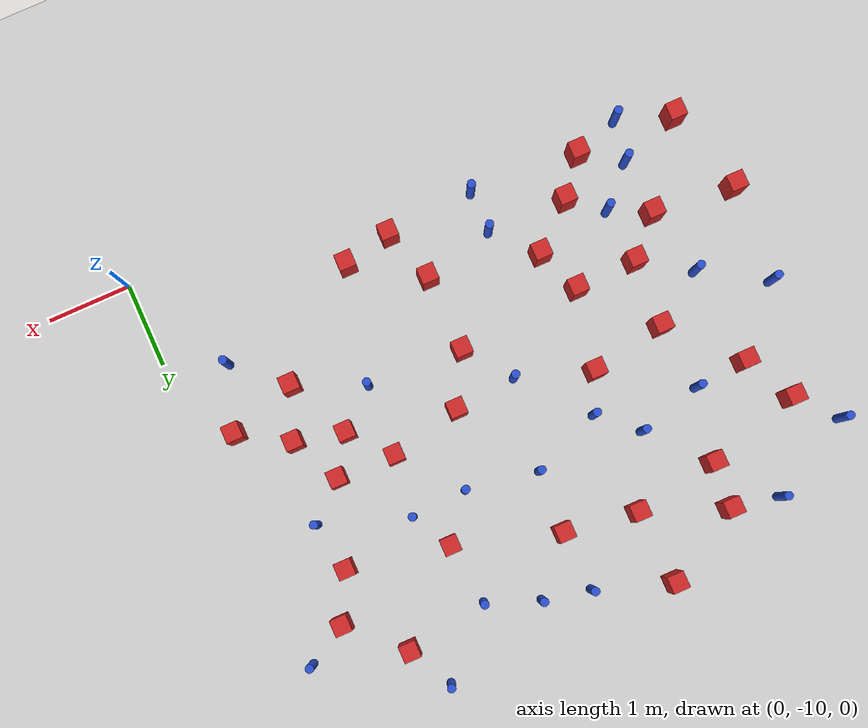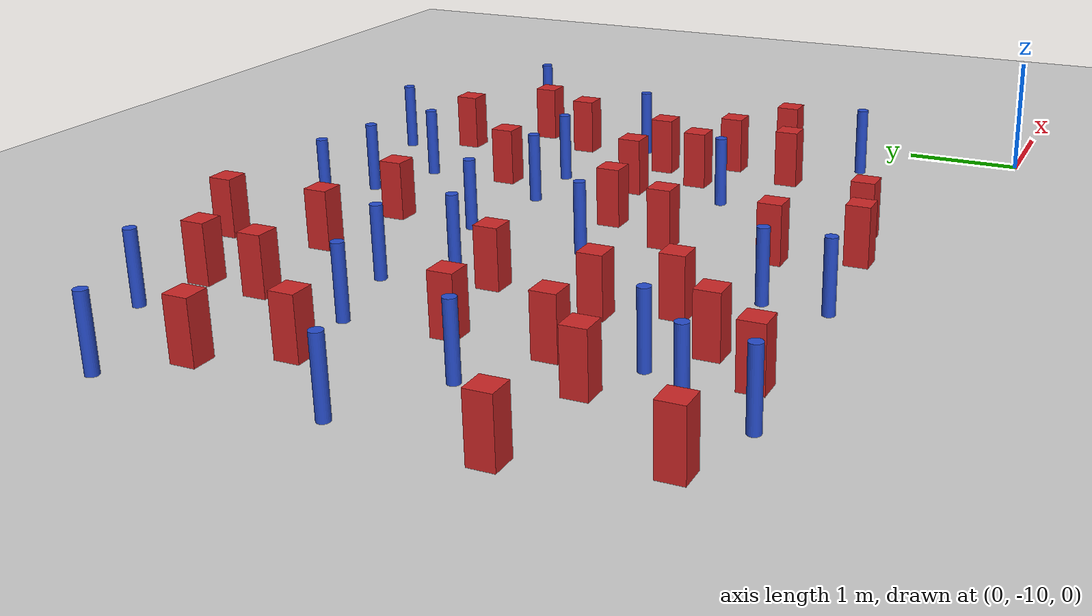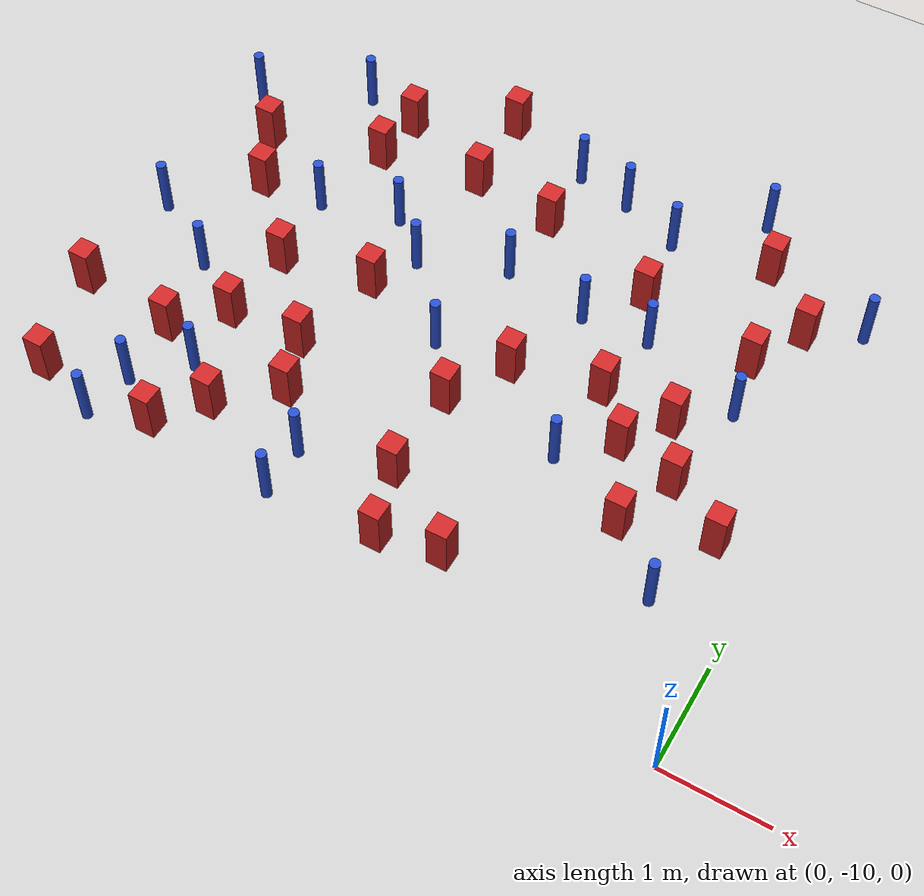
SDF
<sdf version="1.6">
 <world name="default">
  <model name="ground_plane">
   <static>1</static>
   <link name="link">
    <collision name="collision">
     <geometry><plane><normal>0 0 1</normal><size>100 100</size></plane></geometry>
     <surface><friction><ode><mu>100</mu><mu2>50</mu2></ode></friction></surface>
    </collision>
    <visual name="visual">
     <cast_shadows>0</cast_shadows>
     <geometry><plane><normal>0 0 1</normal><size>100 100</size></plane></geometry>
     <material>
      <ambient>1.0 1.0 1.0 1.0</ambient>
      <diffuse>0.8 0.8 0.8 1.0</diffuse>
      <specular>0.01 0.01 0.01 1.000000</specular>
     </material>
    </visual>
   </link>
  </model>
  <model name="square_post_obstacle12">
   <static>true</static>
   <pose>-5.41068607509 -7.08402210731 1.91545236811e-07 -7.35059704564e-06 1.12565212e-07 2.39332434364e-05</pose>
   <link name="link">
    <pose>0 0 0.25 0 -0 0</pose>
    <inertial>
     <mass>100</mass>
     <inertia>
      <ixx>0.166667</ixx>
      <ixy>0</ixy>
      <ixz>0</ixz>
      <iyy>0.166667</iyy>
      <iyz>0</iyz>
      <izz>0.166667</izz>
     </inertia>
    </inertial>
    <collision name="collision"><geometry><box><size>.2 .2 .5</size></box></geometry></collision>
    <visual name="visual">
     <geometry><box><size>.2 .2 .5</size></box></geometry>
     <material>
      <script><name>Gazebo/Red</name><uri>file://media/materials/scripts/gazebo.material</uri></script>
     </material>
    </visual>
   </link>
  </model>
  <model name="square_post_obstacle17">
   <static>true</static>
   <pose>-3.43209271855 -5.3860651551 1.91545236811e-07 -7.35059704564e-06 1.12565212e-07 2.39332434364e-05</pose>
   <link name="link">
    <pose>0 0 0.25 0 -0 0</pose>
    <inertial>
     <mass>100</mass>
     <inertia>
      <ixx>0.166667</ixx>
      <ixy>0</ixy>
      <ixz>0</ixz>
      <iyy>0.166667</iyy>
      <iyz>0</iyz>
      <izz>0.166667</izz>
     </inertia>
    </inertial>
    <collision name="collision"><geometry><box><size>.2 .2 .5</size></box></geometry></collision>
    <visual name="visual">
     <geometry><box><size>.2 .2 .5</size></box></geometry>
     <material>
      <script><name>Gazebo/Red</name><uri>file://media/materials/scripts/gazebo.material</uri></script>
     </material>
    </visual>
   </link>
  </model>
  <model name="square_post_obstacle22">
   <static>true</static>
   <pose>-2.038368199 -6.95661025734 1.91545236811e-07 -7.35059704564e-06 1.12565212e-07 2.39332434364e-05</pose>
   <link name="link">
    <pose>0 0 0.25 0 -0 0</pose>
    <inertial>
     <mass>100</mass>
     <inertia>
      <ixx>0.166667</ixx>
      <ixy>0</ixy>
      <ixz>0</ixz>
      <iyy>0.166667</iyy>
      <iyz>0</iyz>
      <izz>0.166667</izz>
     </inertia>
    </inertial>
    <collision name="collision"><geometry><box><size>.2 .2 .5</size></box></geometry></collision>
    <visual name="visual">
     <geometry><box><size>.2 .2 .5</size></box></geometry>
     <material>
      <script><name>Gazebo/Red</name><uri>file://media/materials/scripts/gazebo.material</uri></script>
     </material>
    </visual>
   </link>
  </model>
  <model name="square_post_obstacle24">
   <static>true</static>
   <pose>-3.20584514164 -8.66685840395 1.91545236811e-07 -7.35059704564e-06 1.12565212e-07 2.39332434364e-05</pose>
   <link name="link">
    <pose>0 0 0.25 0 -0 0</pose>
    <inertial>
     <mass>100</mass>
     <inertia>
      <ixx>0.166667</ixx>
      <ixy>0</ixy>
      <ixz>0</ixz>
      <iyy>0.166667</iyy>
      <iyz>0</iyz>
      <izz>0.166667</izz>
     </inertia>
    </inertial>
    <collision name="collision"><geometry><box><size>.2 .2 .5</size></box></geometry></collision>
    <visual name="visual">
     <geometry><box><size>.2 .2 .5</size></box></geometry>
     <material>
      <script><name>Gazebo/Red</name><uri>file://media/materials/scripts/gazebo.material</uri></script>
     </material>
    </visual>
   </link>
  </model>
  <model name="pole_obstacle18">
   <static>true</static>
   <pose>-3.46971509979 -6.12122088916 7.38925637345e-09 -8.47170692794e-08 1.24976764468e-08 -1.7451309304e-07</pose>
   <link name="link">
    <pose>0 0 0.3 0 -0 0</pose>
    <inertial>
     <mass>1</mass>
     <inertia><ixx>0.145833</ixx><ixy>0</ixy><ixz>0</ixz><iyy>0.145833</iyy><iyz>0</iyz><izz>0.125</izz></inertia>
    </inertial>
    <collision name="collision">
     <geometry><cylinder><radius>0.05</radius><length>.6</length></cylinder></geometry>
    </collision>
    <visual name="visual">
     <geometry><cylinder><radius>0.05</radius><length>.6</length></cylinder></geometry>
     <material>
      <script><name>Gazebo/Blue</name><uri>file://media/materials/scripts/gazebo.material</uri></script>
     </material>
    </visual>
   </link>
  </model>
  <model name="square_post_obstacle28">
   <static>true</static>
   <pose>-4.29787141564 -5.25751584329 1.91545236811e-07 -7.35059704564e-06 1.12565212e-07 2.39332434364e-05</pose>
   <link name="link">
    <pose>0 0 0.25 0 -0 0</pose>
    <inertial>
     <mass>100</mass>
     <inertia>
      <ixx>0.166667</ixx>
      <ixy>0</ixy>
      <ixz>0</ixz>
      <iyy>0.166667</iyy>
      <iyz>0</iyz>
      <izz>0.166667</izz>
     </inertia>
    </inertial>
    <collision name="collision"><geometry><box><size>.2 .2 .5</size></box></geometry></collision>
    <visual name="visual">
     <geometry><box><size>.2 .2 .5</size></box></geometry>
     <material>
      <script><name>Gazebo/Red</name><uri>file://media/materials/scripts/gazebo.material</uri></script>
     </material>
    </visual>
   </link>
  </model>
  <model name="pole_obstacle20">
   <static>true</static>
   <pose>-5.83680416563 -8.98309227645 7.38925637345e-09 -8.471706928e-08 1.24976765081e-08 -1.74513093015e-07</pose>
   <link name="link">
    <pose>0 0 0.3 0 -0 0</pose>
    <inertial>
     <mass>1</mass>
     <inertia><ixx>0.145833</ixx><ixy>0</ixy><ixz>0</ixz><iyy>0.145833</iyy><iyz>0</iyz><izz>0.125</izz></inertia>
    </inertial>
    <collision name="collision">
     <geometry><cylinder><radius>0.05</radius><length>.6</length></cylinder></geometry>
    </collision>
    <visual name="visual">
     <geometry><cylinder><radius>0.05</radius><length>.6</length></cylinder></geometry>
     <material>
      <script><name>Gazebo/Blue</name><uri>file://media/materials/scripts/gazebo.material</uri></script>
     </material>
    </visual>
   </link>
  </model>
  <model name="pole_obstacle23">
   <static>true</static>
   <pose>-4.06241376683 -9.38380228096 7.38925637345e-09 -8.471706928e-08 1.24976765081e-08 -1.74513093015e-07</pose>
   <link name="link">
    <pose>0 0 0.3 0 -0 0</pose>
    <inertial>
     <mass>1</mass>
     <inertia><ixx>0.145833</ixx><ixy>0</ixy><ixz>0</ixz><iyy>0.145833</iyy><iyz>0</iyz><izz>0.125</izz></inertia>
    </inertial>
    <collision name="collision">
     <geometry><cylinder><radius>0.05</radius><length>.6</length></cylinder></geometry>
    </collision>
    <visual name="visual">
     <geometry><cylinder><radius>0.05</radius><length>.6</length></cylinder></geometry>
     <material>
      <script><name>Gazebo/Blue</name><uri>file://media/materials/scripts/gazebo.material</uri></script>
     </material>
    </visual>
   </link>
  </model>
  <model name="pole_obstacle33">
   <static>true</static>
   <pose>-3.46158631779 -4.66086411762 7.38925637345e-09 -8.47170692798e-08 1.24976765033e-08 -1.74513093019e-07</pose>
   <link name="link">
    <pose>0 0 0.3 0 -0 0</pose>
    <inertial>
     <mass>1</mass>
     <inertia><ixx>0.145833</ixx><ixy>0</ixy><ixz>0</ixz><iyy>0.145833</iyy><iyz>0</iyz><izz>0.125</izz></inertia>
    </inertial>
    <collision name="collision">
     <geometry><cylinder><radius>0.05</radius><length>.6</length></cylinder></geometry>
    </collision>
    <visual name="visual">
     <geometry><cylinder><radius>0.05</radius><length>.6</length></cylinder></geometry>
     <material>
      <script><name>Gazebo/Blue</name><uri>file://media/materials/scripts/gazebo.material</uri></script>
     </material>
    </visual>
   </link>
  </model>
  <model name="pole_obstacle35">
   <static>true</static>
   <pose>-0.710234434921 -8.68471318132 7.38925637345e-09 -8.47170692797e-08 1.249767648e-08 -1.74513093032e-07</pose>
   <link name="link">
    <pose>0 0 0.3 0 -0 0</pose>
    <inertial>
     <mass>1</mass>
     <inertia><ixx>0.145833</ixx><ixy>0</ixy><ixz>0</ixz><iyy>0.145833</iyy><iyz>0</iyz><izz>0.125</izz></inertia>
    </inertial>
    <collision name="collision">
     <geometry><cylinder><radius>0.05</radius><length>.6</length></cylinder></geometry>
    </collision>
    <visual name="visual">
     <geometry><cylinder><radius>0.05</radius><length>.6</length></cylinder></geometry>
     <material>
      <script><name>Gazebo/Blue</name><uri>file://media/materials/scripts/gazebo.material</uri></script>
     </material>
    </visual>
   </link>
  </model>
  <model name="pole_obstacle43">
   <static>true</static>
   <pose>-4.06300433239 -8.88145770165 7.38925637345e-09 -8.471706928e-08 1.24976765081e-08 -1.74513093015e-07</pose>
   <link name="link">
    <pose>0 0 0.3 0 -0 0</pose>
    <inertial>
     <mass>1</mass>
     <inertia><ixx>0.145833</ixx><ixy>0</ixy><ixz>0</ixz><iyy>0.145833</iyy><iyz>0</iyz><izz>0.125</izz></inertia>
    </inertial>
    <collision name="collision">
     <geometry><cylinder><radius>0.05</radius><length>.6</length></cylinder></geometry>
    </collision>
    <visual name="visual">
     <geometry><cylinder><radius>0.05</radius><length>.6</length></cylinder></geometry>
     <material>
      <script><name>Gazebo/Blue</name><uri>file://media/materials/scripts/gazebo.material</uri></script>
     </material>
    </visual>
   </link>
  </model>
  <model name="square_post_obstacle53">
   <static>true</static>
   <pose>-1.05053099818 -7.55533912154 1.91545236811e-07 -7.35059704564e-06 1.12565212e-07 2.39332434364e-05</pose>
   <link name="link">
    <pose>0 0 0.25 0 -0 0</pose>
    <inertial>
     <mass>100</mass>
     <inertia>
      <ixx>0.166667</ixx>
      <ixy>0</ixy>
      <ixz>0</ixz>
      <iyy>0.166667</iyy>
      <iyz>0</iyz>
      <izz>0.166667</izz>
     </inertia>
    </inertial>
    <collision name="collision"><geometry><box><size>.2 .2 .5</size></box></geometry></collision>
    <visual name="visual">
     <geometry><box><size>.2 .2 .5</size></box></geometry>
     <material>
      <script><name>Gazebo/Red</name><uri>file://media/materials/scripts/gazebo.material</uri></script>
     </material>
    </visual>
   </link>
  </model>
  <model name="square_post_obstacle54">
   <static>true</static>
   <pose>-5.36515370955 -9.29335347738 1.91545236811e-07 -7.35059704564e-06 1.12565212e-07 2.39332434364e-05</pose>
   <link name="link">
    <pose>0 0 0.25 0 -0 0</pose>
    <inertial>
     <mass>100</mass>
     <inertia>
      <ixx>0.166667</ixx>
      <ixy>0</ixy>
      <ixz>0</ixz>
      <iyy>0.166667</iyy>
      <iyz>0</iyz>
      <izz>0.166667</izz>
     </inertia>
    </inertial>
    <collision name="collision"><geometry><box><size>.2 .2 .5</size></box></geometry></collision>
    <visual name="visual">
     <geometry><box><size>.2 .2 .5</size></box></geometry>
     <material>
      <script><name>Gazebo/Red</name><uri>file://media/materials/scripts/gazebo.material</uri></script>
     </material>
    </visual>
   </link>
  </model>
  <model name="square_post_obstacle60">
   <static>true</static>
   <pose>-2.88829652533 -7.14655431873 1.91545236811e-07 -7.35059704564e-06 1.12565212e-07 2.39332434364e-05</pose>
   <link name="link">
    <pose>0 0 0.25 0 -0 0</pose>
    <inertial>
     <mass>100</mass>
     <inertia>
      <ixx>0.166667</ixx>
      <ixy>0</ixy>
      <ixz>0</ixz>
      <iyy>0.166667</iyy>
      <iyz>0</iyz>
      <izz>0.166667</izz>
     </inertia>
    </inertial>
    <collision name="collision"><geometry><box><size>.2 .2 .5</size></box></geometry></collision>
    <visual name="visual">
     <geometry><box><size>.2 .2 .5</size></box></geometry>
     <material>
      <script><name>Gazebo/Red</name><uri>file://media/materials/scripts/gazebo.material</uri></script>
     </material>
    </visual>
   </link>
  </model>
  <model name="pole_obstacle60">
   <static>true</static>
   <pose>-1.94277217032 -6.22820637611 7.38925637345e-09 -8.47170692799e-08 1.24976765033e-08 -1.74513093018e-07</pose>
   <link name="link">
    <pose>0 0 0.3 0 -0 0</pose>
    <inertial>
     <mass>1</mass>
     <inertia><ixx>0.145833</ixx><ixy>0</ixy><ixz>0</ixz><iyy>0.145833</iyy><iyz>0</iyz><izz>0.125</izz></inertia>
    </inertial>
    <collision name="collision">
     <geometry><cylinder><radius>0.05</radius><length>.6</length></cylinder></geometry>
    </collision>
    <visual name="visual">
     <geometry><cylinder><radius>0.05</radius><length>.6</length></cylinder></geometry>
     <material>
      <script><name>Gazebo/Blue</name><uri>file://media/materials/scripts/gazebo.material</uri></script>
     </material>
    </visual>
   </link>
  </model>
  <model name="square_post_obstacle62">
   <static>true</static>
   <pose>-1.633328484 -7.4171841754 1.91545236811e-07 -7.35059704564e-06 1.12565212e-07 2.39332434364e-05</pose>
   <link name="link">
    <pose>0 0 0.25 0 -0 0</pose>
    <inertial>
     <mass>100</mass>
     <inertia>
      <ixx>0.166667</ixx>
      <ixy>0</ixy>
      <ixz>0</ixz>
      <iyy>0.166667</iyy>
      <iyz>0</iyz>
      <izz>0.166667</izz>
     </inertia>
    </inertial>
    <collision name="collision"><geometry><box><size>.2 .2 .5</size></box></geometry></collision>
    <visual name="visual">
     <geometry><box><size>.2 .2 .5</size></box></geometry>
     <material>
      <script><name>Gazebo/Red</name><uri>file://media/materials/scripts/gazebo.material</uri></script>
     </material>
    </visual>
   </link>
  </model>
  <model name="pole_obstacle63">
   <static>true</static>
   <pose>-1.58286187129 -4.33795926756 7.38925637345e-09 -8.47170692799e-08 1.24976765033e-08 -1.74513093018e-07</pose>
   <link name="link">
    <pose>0 0 0.3 0 -0 0</pose>
    <inertial>
     <mass>1</mass>
     <inertia><ixx>0.145833</ixx><ixy>0</ixy><ixz>0</ixz><iyy>0.145833</iyy><iyz>0</iyz><izz>0.125</izz></inertia>
    </inertial>
    <collision name="collision">
     <geometry><cylinder><radius>0.05</radius><length>.6</length></cylinder></geometry>
    </collision>
    <visual name="visual">
     <geometry><cylinder><radius>0.05</radius><length>.6</length></cylinder></geometry>
     <material>
      <script><name>Gazebo/Blue</name><uri>file://media/materials/scripts/gazebo.material</uri></script>
     </material>
    </visual>
   </link>
  </model>
  <model name="square_post_obstacle66">
   <static>true</static>
   <pose>-6.12490160005 -6.32883046452 1.91545236811e-07 -7.35059704564e-06 1.12565212e-07 2.39332434364e-05</pose>
   <link name="link">
    <pose>0 0 0.25 0 -0 0</pose>
    <inertial>
     <mass>100</mass>
     <inertia>
      <ixx>0.166667</ixx>
      <ixy>0</ixy>
      <ixz>0</ixz>
      <iyy>0.166667</iyy>
      <iyz>0</iyz>
      <izz>0.166667</izz>
     </inertia>
    </inertial>
    <collision name="collision"><geometry><box><size>.2 .2 .5</size></box></geometry></collision>
    <visual name="visual">
     <geometry><box><size>.2 .2 .5</size></box></geometry>
     <material>
      <script><name>Gazebo/Red</name><uri>file://media/materials/scripts/gazebo.material</uri></script>
     </material>
    </visual>
   </link>
  </model>
  <model name="square_post_obstacle72">
   <static>true</static>
   <pose>-2.99029878786 -9.30736781049 1.91545236811e-07 -7.35059704564e-06 1.12565212e-07 2.39332434364e-05</pose>
   <link name="link">
    <pose>0 0 0.25 0 -0 0</pose>
    <inertial>
     <mass>100</mass>
     <inertia>
      <ixx>0.166667</ixx>
      <ixy>0</ixy>
      <ixz>0</ixz>
      <iyy>0.166667</iyy>
      <iyz>0</iyz>
      <izz>0.166667</izz>
     </inertia>
    </inertial>
    <collision name="collision"><geometry><box><size>.2 .2 .5</size></box></geometry></collision>
    <visual name="visual">
     <geometry><box><size>.2 .2 .5</size></box></geometry>
     <material>
      <script><name>Gazebo/Red</name><uri>file://media/materials/scripts/gazebo.material</uri></script>
     </material>
    </visual>
   </link>
  </model>
  <model name="square_post_obstacle73">
   <static>true</static>
   <pose>-4.49659342837 -8.39695221917 1.91545236811e-07 -7.35059704564e-06 1.12565212e-07 2.39332434364e-05</pose>
   <link name="link">
    <pose>0 0 0.25 0 -0 0</pose>
    <inertial>
     <mass>100</mass>
     <inertia>
      <ixx>0.166667</ixx>
      <ixy>0</ixy>
      <ixz>0</ixz>
      <iyy>0.166667</iyy>
      <iyz>0</iyz>
      <izz>0.166667</izz>
     </inertia>
    </inertial>
    <collision name="collision"><geometry><box><size>.2 .2 .5</size></box></geometry></collision>
    <visual name="visual">
     <geometry><box><size>.2 .2 .5</size></box></geometry>
     <material>
      <script><name>Gazebo/Red</name><uri>file://media/materials/scripts/gazebo.material</uri></script>
     </material>
    </visual>
   </link>
  </model>
  <model name="square_post_obstacle74">
   <static>true</static>
   <pose>-2.41072366628 -9.18370162744 1.91545236811e-07 -7.35059704564e-06 1.12565212e-07 2.39332434364e-05</pose>
   <link name="link">
    <pose>0 0 0.25 0 -0 0</pose>
    <inertial>
     <mass>100</mass>
     <inertia>
      <ixx>0.166667</ixx>
      <ixy>0</ixy>
      <ixz>0</ixz>
      <iyy>0.166667</iyy>
      <iyz>0</iyz>
      <izz>0.166667</izz>
     </inertia>
    </inertial>
    <collision name="collision"><geometry><box><size>.2 .2 .5</size></box></geometry></collision>
    <visual name="visual">
     <geometry><box><size>.2 .2 .5</size></box></geometry>
     <material>
      <script><name>Gazebo/Red</name><uri>file://media/materials/scripts/gazebo.material</uri></script>
     </material>
    </visual>
   </link>
  </model>
  <model name="pole_obstacle78">
   <static>true</static>
   <pose>-2.08131502087 -7.80772590746 7.38925637345e-09 -8.47170692798e-08 1.24976765033e-08 -1.74513093019e-07</pose>
   <link name="link">
    <pose>0 0 0.3 0 -0 0</pose>
    <inertial>
     <mass>1</mass>
     <inertia><ixx>0.145833</ixx><ixy>0</ixy><ixz>0</ixz><iyy>0.145833</iyy><iyz>0</iyz><izz>0.125</izz></inertia>
    </inertial>
    <collision name="collision">
     <geometry><cylinder><radius>0.05</radius><length>.6</length></cylinder></geometry>
    </collision>
    <visual name="visual">
     <geometry><cylinder><radius>0.05</radius><length>.6</length></cylinder></geometry>
     <material>
      <script><name>Gazebo/Blue</name><uri>file://media/materials/scripts/gazebo.material</uri></script>
     </material>
    </visual>
   </link>
  </model>
  <model name="pole_obstacle89">
   <static>true</static>
   <pose>-6.8022423894 -7.04252857617 7.38925637345e-09 -8.47170692796e-08 1.24976764786e-08 -1.74513093032e-07</pose>
   <link name="link">
    <pose>0 0 0.3 0 -0 0</pose>
    <inertial>
     <mass>1</mass>
     <inertia><ixx>0.145833</ixx><ixy>0</ixy><ixz>0</ixz><iyy>0.145833</iyy><iyz>0</iyz><izz>0.125</izz></inertia>
    </inertial>
    <collision name="collision">
     <geometry><cylinder><radius>0.05</radius><length>.6</length></cylinder></geometry>
    </collision>
    <visual name="visual">
     <geometry><cylinder><radius>0.05</radius><length>.6</length></cylinder></geometry>
     <material>
      <script><name>Gazebo/Blue</name><uri>file://media/materials/scripts/gazebo.material</uri></script>
     </material>
    </visual>
   </link>
  </model>
  <model name="square_post_obstacle82">
   <static>true</static>
   <pose>-5.27118096039 -4.87388183172 1.91545236811e-07 -7.35059704564e-06 1.12565212e-07 2.39332434364e-05</pose>
   <link name="link">
    <pose>0 0 0.25 0 -0 0</pose>
    <inertial>
     <mass>100</mass>
     <inertia>
      <ixx>0.166667</ixx>
      <ixy>0</ixy>
      <ixz>0</ixz>
      <iyy>0.166667</iyy>
      <iyz>0</iyz>
      <izz>0.166667</izz>
     </inertia>
    </inertial>
    <collision name="collision"><geometry><box><size>.2 .2 .5</size></box></geometry></collision>
    <visual name="visual">
     <geometry><box><size>.2 .2 .5</size></box></geometry>
     <material>
      <script><name>Gazebo/Red</name><uri>file://media/materials/scripts/gazebo.material</uri></script>
     </material>
    </visual>
   </link>
  </model>
  <model name="pole_obstacle91">
   <static>true</static>
   <pose>-5.93264494707 -9.48637314836 7.38925637345e-09 -8.471706928e-08 1.24976765081e-08 -1.74513093015e-07</pose>
   <link name="link">
    <pose>0 0 0.3 0 -0 0</pose>
    <inertial>
     <mass>1</mass>
     <inertia><ixx>0.145833</ixx><ixy>0</ixy><ixz>0</ixz><iyy>0.145833</iyy><iyz>0</iyz><izz>0.125</izz></inertia>
    </inertial>
    <collision name="collision">
     <geometry><cylinder><radius>0.05</radius><length>.6</length></cylinder></geometry>
    </collision>
    <visual name="visual">
     <geometry><cylinder><radius>0.05</radius><length>.6</length></cylinder></geometry>
     <material>
      <script><name>Gazebo/Blue</name><uri>file://media/materials/scripts/gazebo.material</uri></script>
     </material>
    </visual>
   </link>
  </model>
  <model name="pole_obstacle97">
   <static>true</static>
   <pose>-5.41301992296 -8.54826556517 7.38925637345e-09 -8.471706928e-08 1.24976765081e-08 -1.74513093015e-07</pose>
   <link name="link">
    <pose>0 0 0.3 0 -0 0</pose>
    <inertial>
     <mass>1</mass>
     <inertia><ixx>0.145833</ixx><ixy>0</ixy><ixz>0</ixz><iyy>0.145833</iyy><iyz>0</iyz><izz>0.125</izz></inertia>
    </inertial>
    <collision name="collision">
     <geometry><cylinder><radius>0.05</radius><length>.6</length></cylinder></geometry>
    </collision>
    <visual name="visual">
     <geometry><cylinder><radius>0.05</radius><length>.6</length></cylinder></geometry>
     <material>
      <script><name>Gazebo/Blue</name><uri>file://media/materials/scripts/gazebo.material</uri></script>
     </material>
    </visual>
   </link>
  </model>
  <model name="square_post_obstacle92">
   <static>true</static>
   <pose>-1.34104956124 -6.97358590977 1.91545236811e-07 -7.35059704564e-06 1.12565212e-07 2.39332434364e-05</pose>
   <link name="link">
    <pose>0 0 0.25 0 -0 0</pose>
    <inertial>
     <mass>100</mass>
     <inertia>
      <ixx>0.166667</ixx>
      <ixy>0</ixy>
      <ixz>0</ixz>
      <iyy>0.166667</iyy>
      <iyz>0</iyz>
      <izz>0.166667</izz>
     </inertia>
    </inertial>
    <collision name="collision"><geometry><box><size>.2 .2 .5</size></box></geometry></collision>
    <visual name="visual">
     <geometry><box><size>.2 .2 .5</size></box></geometry>
     <material>
      <script><name>Gazebo/Red</name><uri>file://media/materials/scripts/gazebo.material</uri></script>
     </material>
    </visual>
   </link>
  </model>
  <model name="pole_obstacle108">
   <static>true</static>
   <pose>-6.0496645316 -7.49928744489 7.38925637345e-09 -8.47170692796e-08 1.24976764786e-08 -1.74513093032e-07</pose>
   <link name="link">
    <pose>0 0 0.3 0 -0 0</pose>
    <inertial>
     <mass>1</mass>
     <inertia><ixx>0.145833</ixx><ixy>0</ixy><ixz>0</ixz><iyy>0.145833</iyy><iyz>0</iyz><izz>0.125</izz></inertia>
    </inertial>
    <collision name="collision">
     <geometry><cylinder><radius>0.05</radius><length>.6</length></cylinder></geometry>
    </collision>
    <visual name="visual">
     <geometry><cylinder><radius>0.05</radius><length>.6</length></cylinder></geometry>
     <material>
      <script><name>Gazebo/Blue</name><uri>file://media/materials/scripts/gazebo.material</uri></script>
     </material>
    </visual>
   </link>
  </model>
  <model name="square_post_obstacle96">
   <static>true</static>
   <pose>-6.5650696146 -9.25164843919 1.91545236811e-07 -7.35059704564e-06 1.12565212e-07 2.39332434364e-05</pose>
   <link name="link">
    <pose>0 0 0.25 0 -0 0</pose>
    <inertial>
     <mass>100</mass>
     <inertia>
      <ixx>0.166667</ixx>
      <ixy>0</ixy>
      <ixz>0</ixz>
      <iyy>0.166667</iyy>
      <iyz>0</iyz>
      <izz>0.166667</izz>
     </inertia>
    </inertial>
    <collision name="collision"><geometry><box><size>.2 .2 .5</size></box></geometry></collision>
    <visual name="visual">
     <geometry><box><size>.2 .2 .5</size></box></geometry>
     <material>
      <script><name>Gazebo/Red</name><uri>file://media/materials/scripts/gazebo.material</uri></script>
     </material>
    </visual>
   </link>
  </model>
  <model name="pole_obstacle111">
   <static>true</static>
   <pose>-0.240811397069 -5.16509340527 7.38925637345e-09 -8.47170692799e-08 1.2497676507e-08 -1.74513093018e-07</pose>
   <link name="link">
    <pose>0 0 0.3 0 -0 0</pose>
    <inertial>
     <mass>1</mass>
     <inertia><ixx>0.145833</ixx><ixy>0</ixy><ixz>0</ixz><iyy>0.145833</iyy><iyz>0</iyz><izz>0.125</izz></inertia>
    </inertial>
    <collision name="collision">
     <geometry><cylinder><radius>0.05</radius><length>.6</length></cylinder></geometry>
    </collision>
    <visual name="visual">
     <geometry><cylinder><radius>0.05</radius><length>.6</length></cylinder></geometry>
     <material>
      <script><name>Gazebo/Blue</name><uri>file://media/materials/scripts/gazebo.material</uri></script>
     </material>
    </visual>
   </link>
  </model>
  <model name="square_post_obstacle103">
   <static>true</static>
   <pose>-6.44052211273 -5.73712340366 1.91545236811e-07 -7.35059704564e-06 1.12565212e-07 2.39332434364e-05</pose>
   <link name="link">
    <pose>0 0 0.25 0 -0 0</pose>
    <inertial>
     <mass>100</mass>
     <inertia>
      <ixx>0.166667</ixx>
      <ixy>0</ixy>
      <ixz>0</ixz>
      <iyy>0.166667</iyy>
      <iyz>0</iyz>
      <izz>0.166667</izz>
     </inertia>
    </inertial>
    <collision name="collision"><geometry><box><size>.2 .2 .5</size></box></geometry></collision>
    <visual name="visual">
     <geometry><box><size>.2 .2 .5</size></box></geometry>
     <material>
      <script><name>Gazebo/Red</name><uri>file://media/materials/scripts/gazebo.material</uri></script>
     </material>
    </visual>
   </link>
  </model>
  <model name="square_post_obstacle105">
   <static>true</static>
   <pose>-5.3130401738 -5.42186706929 1.91545236811e-07 -7.35059704564e-06 1.12565212e-07 2.39332434364e-05</pose>
   <link name="link">
    <pose>0 0 0.25 0 -0 0</pose>
    <inertial>
     <mass>100</mass>
     <inertia>
      <ixx>0.166667</ixx>
      <ixy>0</ixy>
      <ixz>0</ixz>
      <iyy>0.166667</iyy>
      <iyz>0</iyz>
      <izz>0.166667</izz>
     </inertia>
    </inertial>
    <collision name="collision"><geometry><box><size>.2 .2 .5</size></box></geometry></collision>
    <visual name="visual">
     <geometry><box><size>.2 .2 .5</size></box></geometry>
     <material>
      <script><name>Gazebo/Red</name><uri>file://media/materials/scripts/gazebo.material</uri></script>
     </material>
    </visual>
   </link>
  </model>
  <model name="square_post_obstacle107">
   <static>true</static>
   <pose>-5.45247419289 -7.88697230379 1.91545236811e-07 -7.35059704564e-06 1.12565212e-07 2.39332434364e-05</pose>
   <link name="link">
    <pose>0 0 0.25 0 -0 0</pose>
    <inertial>
     <mass>100</mass>
     <inertia>
      <ixx>0.166667</ixx>
      <ixy>0</ixy>
      <ixz>0</ixz>
      <iyy>0.166667</iyy>
      <iyz>0</iyz>
      <izz>0.166667</izz>
     </inertia>
    </inertial>
    <collision name="collision"><geometry><box><size>.2 .2 .5</size></box></geometry></collision>
    <visual name="visual">
     <geometry><box><size>.2 .2 .5</size></box></geometry>
     <material>
      <script><name>Gazebo/Red</name><uri>file://media/materials/scripts/gazebo.material</uri></script>
     </material>
    </visual>
   </link>
  </model>
  <model name="pole_obstacle123">
   <static>true</static>
   <pose>-5.85402552709 -4.7521753396 7.38925637345e-09 -8.47170692796e-08 1.24976764786e-08 -1.74513093032e-07</pose>
   <link name="link">
    <pose>0 0 0.3 0 -0 0</pose>
    <inertial>
     <mass>1</mass>
     <inertia><ixx>0.145833</ixx><ixy>0</ixy><ixz>0</ixz><iyy>0.145833</iyy><iyz>0</iyz><izz>0.125</izz></inertia>
    </inertial>
    <collision name="collision">
     <geometry><cylinder><radius>0.05</radius><length>.6</length></cylinder></geometry>
    </collision>
    <visual name="visual">
     <geometry><cylinder><radius>0.05</radius><length>.6</length></cylinder></geometry>
     <material>
      <script><name>Gazebo/Blue</name><uri>file://media/materials/scripts/gazebo.material</uri></script>
     </material>
    </visual>
   </link>
  </model>
  <model name="square_post_obstacle114">
   <static>true</static>
   <pose>-6.8543479229 -8.21620341294 1.91545236811e-07 -7.35059704564e-06 1.12565212e-07 2.39332434364e-05</pose>
   <link name="link">
    <pose>0 0 0.25 0 -0 0</pose>
    <inertial>
     <mass>100</mass>
     <inertia>
      <ixx>0.166667</ixx>
      <ixy>0</ixy>
      <ixz>0</ixz>
      <iyy>0.166667</iyy>
      <iyz>0</iyz>
      <izz>0.166667</izz>
     </inertia>
    </inertial>
    <collision name="collision"><geometry><box><size>.2 .2 .5</size></box></geometry></collision>
    <visual name="visual">
     <geometry><box><size>.2 .2 .5</size></box></geometry>
     <material>
      <script><name>Gazebo/Red</name><uri>file://media/materials/scripts/gazebo.material</uri></script>
     </material>
    </visual>
   </link>
  </model>
  <model name="square_post_obstacle117">
   <static>true</static>
   <pose>-3.22059697371 -7.7479272865 1.91545236811e-07 -7.35059704564e-06 1.12565212e-07 2.39332434364e-05</pose>
   <link name="link">
    <pose>0 0 0.25 0 -0 0</pose>
    <inertial>
     <mass>100</mass>
     <inertia>
      <ixx>0.166667</ixx>
      <ixy>0</ixy>
      <ixz>0</ixz>
      <iyy>0.166667</iyy>
      <iyz>0</iyz>
      <izz>0.166667</izz>
     </inertia>
    </inertial>
    <collision name="collision"><geometry><box><size>.2 .2 .5</size></box></geometry></collision>
    <visual name="visual">
     <geometry><box><size>.2 .2 .5</size></box></geometry>
     <material>
      <script><name>Gazebo/Red</name><uri>file://media/materials/scripts/gazebo.material</uri></script>
     </material>
    </visual>
   </link>
  </model>
  <model name="square_post_obstacle123">
   <static>true</static>
   <pose>-0.731444615216 -5.44779982728 1.91545236811e-07 -7.35059704564e-06 1.12565212e-07 2.39332434364e-05</pose>
   <link name="link">
    <pose>0 0 0.25 0 -0 0</pose>
    <inertial>
     <mass>100</mass>
     <inertia>
      <ixx>0.166667</ixx>
      <ixy>0</ixy>
      <ixz>0</ixz>
      <iyy>0.166667</iyy>
      <iyz>0</iyz>
      <izz>0.166667</izz>
     </inertia>
    </inertial>
    <collision name="collision"><geometry><box><size>.2 .2 .5</size></box></geometry></collision>
    <visual name="visual">
     <geometry><box><size>.2 .2 .5</size></box></geometry>
     <material>
      <script><name>Gazebo/Red</name><uri>file://media/materials/scripts/gazebo.material</uri></script>
     </material>
    </visual>
   </link>
  </model>
  <model name="square_post_obstacle136">
   <static>true</static>
   <pose>-1.2735293029 -8.16457493738 1.91545236811e-07 -7.35059704564e-06 1.12565212e-07 2.39332434364e-05</pose>
   <link name="link">
    <pose>0 0 0.25 0 -0 0</pose>
    <inertial>
     <mass>100</mass>
     <inertia>
      <ixx>0.166667</ixx>
      <ixy>0</ixy>
      <ixz>0</ixz>
      <iyy>0.166667</iyy>
      <iyz>0</iyz>
      <izz>0.166667</izz>
     </inertia>
    </inertial>
    <collision name="collision"><geometry><box><size>.2 .2 .5</size></box></geometry></collision>
    <visual name="visual">
     <geometry><box><size>.2 .2 .5</size></box></geometry>
     <material>
      <script><name>Gazebo/Red</name><uri>file://media/materials/scripts/gazebo.material</uri></script>
     </material>
    </visual>
   </link>
  </model>
  <model name="pole_obstacle146">
   <static>true</static>
   <pose>-4.29705899095 -6.45734727674 7.38925637345e-09 -8.47170692796e-08 1.24976764786e-08 -1.74513093032e-07</pose>
   <link name="link">
    <pose>0 0 0.3 0 -0 0</pose>
    <inertial>
     <mass>1</mass>
     <inertia><ixx>0.145833</ixx><ixy>0</ixy><ixz>0</ixz><iyy>0.145833</iyy><iyz>0</iyz><izz>0.125</izz></inertia>
    </inertial>
    <collision name="collision">
     <geometry><cylinder><radius>0.05</radius><length>.6</length></cylinder></geometry>
    </collision>
    <visual name="visual">
     <geometry><cylinder><radius>0.05</radius><length>.6</length></cylinder></geometry>
     <material>
      <script><name>Gazebo/Blue</name><uri>file://media/materials/scripts/gazebo.material</uri></script>
     </material>
    </visual>
   </link>
  </model>
  <model name="pole_obstacle148">
   <static>true</static>
   <pose>-2.89820600436 -4.78071408801 7.38925637345e-09 -8.47170692798e-08 1.24976765033e-08 -1.74513093019e-07</pose>
   <link name="link">
    <pose>0 0 0.3 0 -0 0</pose>
    <inertial>
     <mass>1</mass>
     <inertia><ixx>0.145833</ixx><ixy>0</ixy><ixz>0</ixz><iyy>0.145833</iyy><iyz>0</iyz><izz>0.125</izz></inertia>
    </inertial>
    <collision name="collision">
     <geometry><cylinder><radius>0.05</radius><length>.6</length></cylinder></geometry>
    </collision>
    <visual name="visual">
     <geometry><cylinder><radius>0.05</radius><length>.6</length></cylinder></geometry>
     <material>
      <script><name>Gazebo/Blue</name><uri>file://media/materials/scripts/gazebo.material</uri></script>
     </material>
    </visual>
   </link>
  </model>
  <model name="pole_obstacle150">
   <static>true</static>
   <pose>-2.28552594594 -5.02235626429 7.38925637345e-09 -8.47170692798e-08 1.24976765033e-08 -1.74513093019e-07</pose>
   <link name="link">
    <pose>0 0 0.3 0 -0 0</pose>
    <inertial>
     <mass>1</mass>
     <inertia><ixx>0.145833</ixx><ixy>0</ixy><ixz>0</ixz><iyy>0.145833</iyy><iyz>0</iyz><izz>0.125</izz></inertia>
    </inertial>
    <collision name="collision">
     <geometry><cylinder><radius>0.05</radius><length>.6</length></cylinder></geometry>
    </collision>
    <visual name="visual">
     <geometry><cylinder><radius>0.05</radius><length>.6</length></cylinder></geometry>
     <material>
      <script><name>Gazebo/Blue</name><uri>file://media/materials/scripts/gazebo.material</uri></script>
     </material>
    </visual>
   </link>
  </model>
  <model name="pole_obstacle155">
   <static>true</static>
   <pose>-2.60984735376 -6.26531074343 7.38925637345e-09 -8.47170692798e-08 1.24976765033e-08 -1.74513093019e-07</pose>
   <link name="link">
    <pose>0 0 0.3 0 -0 0</pose>
    <inertial>
     <mass>1</mass>
     <inertia><ixx>0.145833</ixx><ixy>0</ixy><ixz>0</ixz><iyy>0.145833</iyy><iyz>0</iyz><izz>0.125</izz></inertia>
    </inertial>
    <collision name="collision">
     <geometry><cylinder><radius>0.05</radius><length>.6</length></cylinder></geometry>
    </collision>
    <visual name="visual">
     <geometry><cylinder><radius>0.05</radius><length>.6</length></cylinder></geometry>
     <material>
      <script><name>Gazebo/Blue</name><uri>file://media/materials/scripts/gazebo.material</uri></script>
     </material>
    </visual>
   </link>
  </model>
  <model name="pole_obstacle157">
   <static>true</static>
   <pose>-3.63916560769 -7.21319885248 7.38925637345e-09 -8.47170692794e-08 1.24976764468e-08 -1.7451309304e-07</pose>
   <link name="link">
    <pose>0 0 0.3 0 -0 0</pose>
    <inertial>
     <mass>1</mass>
     <inertia><ixx>0.145833</ixx><ixy>0</ixy><ixz>0</ixz><iyy>0.145833</iyy><iyz>0</iyz><izz>0.125</izz></inertia>
    </inertial>
    <collision name="collision">
     <geometry><cylinder><radius>0.05</radius><length>.6</length></cylinder></geometry>
    </collision>
    <visual name="visual">
     <geometry><cylinder><radius>0.05</radius><length>.6</length></cylinder></geometry>
     <material>
      <script><name>Gazebo/Blue</name><uri>file://media/materials/scripts/gazebo.material</uri></script>
     </material>
    </visual>
   </link>
  </model>
  <model name="pole_obstacle162">
   <static>true</static>
   <pose>-5.50503059505 -6.27062995031 7.38925637345e-09 -8.47170692796e-08 1.24976764786e-08 -1.74513093032e-07</pose>
   <link name="link">
    <pose>0 0 0.3 0 -0 0</pose>
    <inertial>
     <mass>1</mass>
     <inertia><ixx>0.145833</ixx><ixy>0</ixy><ixz>0</ixz><iyy>0.145833</iyy><iyz>0</iyz><izz>0.125</izz></inertia>
    </inertial>
    <collision name="collision">
     <geometry><cylinder><radius>0.05</radius><length>.6</length></cylinder></geometry>
    </collision>
    <visual name="visual">
     <geometry><cylinder><radius>0.05</radius><length>.6</length></cylinder></geometry>
     <material>
      <script><name>Gazebo/Blue</name><uri>file://media/materials/scripts/gazebo.material</uri></script>
     </material>
    </visual>
   </link>
  </model>
  <model name="square_post_obstacle158">
   <static>true</static>
   <pose>-4.51276837913 -6.91771646035 1.91545236811e-07 -7.35059704564e-06 1.12565212e-07 2.39332434364e-05</pose>
   <link name="link">
    <pose>0 0 0.25 0 -0 0</pose>
    <inertial>
     <mass>100</mass>
     <inertia>
      <ixx>0.166667</ixx>
      <ixy>0</ixy>
      <ixz>0</ixz>
      <iyy>0.166667</iyy>
      <iyz>0</iyz>
      <izz>0.166667</izz>
     </inertia>
    </inertial>
    <collision name="collision"><geometry><box><size>.2 .2 .5</size></box></geometry></collision>
    <visual name="visual">
     <geometry><box><size>.2 .2 .5</size></box></geometry>
     <material>
      <script><name>Gazebo/Red</name><uri>file://media/materials/scripts/gazebo.material</uri></script>
     </material>
    </visual>
   </link>
  </model>
  <model name="square_post_obstacle161">
   <static>true</static>
   <pose>-1.31505514524 -4.87814868228 1.91545236811e-07 -7.35059704564e-06 1.12565212e-07 2.39332434364e-05</pose>
   <link name="link">
    <pose>0 0 0.25 0 -0 0</pose>
    <inertial>
     <mass>100</mass>
     <inertia>
      <ixx>0.166667</ixx>
      <ixy>0</ixy>
      <ixz>0</ixz>
      <iyy>0.166667</iyy>
      <iyz>0</iyz>
      <izz>0.166667</izz>
     </inertia>
    </inertial>
    <collision name="collision"><geometry><box><size>.2 .2 .5</size></box></geometry></collision>
    <visual name="visual">
     <geometry><box><size>.2 .2 .5</size></box></geometry>
     <material>
      <script><name>Gazebo/Red</name><uri>file://media/materials/scripts/gazebo.material</uri></script>
     </material>
    </visual>
   </link>
  </model>
  <model name="square_post_obstacle169">
   <static>true</static>
   <pose>-2.20511327161 -5.76873931842 1.91545236811e-07 -7.35059704564e-06 1.12565212e-07 2.39332434364e-05</pose>
   <link name="link">
    <pose>0 0 0.25 0 -0 0</pose>
    <inertial>
     <mass>100</mass>
     <inertia>
      <ixx>0.166667</ixx>
      <ixy>0</ixy>
      <ixz>0</ixz>
      <iyy>0.166667</iyy>
      <iyz>0</iyz>
      <izz>0.166667</izz>
     </inertia>
    </inertial>
    <collision name="collision"><geometry><box><size>.2 .2 .5</size></box></geometry></collision>
    <visual name="visual">
     <geometry><box><size>.2 .2 .5</size></box></geometry>
     <material>
      <script><name>Gazebo/Red</name><uri>file://media/materials/scripts/gazebo.material</uri></script>
     </material>
    </visual>
   </link>
  </model>
  <model name="square_post_obstacle175">
   <static>true</static>
   <pose>-0.471311503338 -7.91204319302 1.91545236811e-07 -7.35059704564e-06 1.12565212e-07 2.39332434364e-05</pose>
   <link name="link">
    <pose>0 0 0.25 0 -0 0</pose>
    <inertial>
     <mass>100</mass>
     <inertia>
      <ixx>0.166667</ixx>
      <ixy>0</ixy>
      <ixz>0</ixz>
      <iyy>0.166667</iyy>
      <iyz>0</iyz>
      <izz>0.166667</izz>
     </inertia>
    </inertial>
    <collision name="collision"><geometry><box><size>.2 .2 .5</size></box></geometry></collision>
    <visual name="visual">
     <geometry><box><size>.2 .2 .5</size></box></geometry>
     <material>
      <script><name>Gazebo/Red</name><uri>file://media/materials/scripts/gazebo.material</uri></script>
     </material>
    </visual>
   </link>
  </model>
  <model name="square_post_obstacle179">
   <static>true</static>
   <pose>-5.86843596142 -8.31386037906 1.91545236811e-07 -7.35059704564e-06 1.12565212e-07 2.39332434364e-05</pose>
   <link name="link">
    <pose>0 0 0.25 0 -0 0</pose>
    <inertial>
     <mass>100</mass>
     <inertia>
      <ixx>0.166667</ixx>
      <ixy>0</ixy>
      <ixz>0</ixz>
      <iyy>0.166667</iyy>
      <iyz>0</iyz>
      <izz>0.166667</izz>
     </inertia>
    </inertial>
    <collision name="collision"><geometry><box><size>.2 .2 .5</size></box></geometry></collision>
    <visual name="visual">
     <geometry><box><size>.2 .2 .5</size></box></geometry>
     <material>
      <script><name>Gazebo/Red</name><uri>file://media/materials/scripts/gazebo.material</uri></script>
     </material>
    </visual>
   </link>
  </model>
  <model name="square_post_obstacle180">
   <static>true</static>
   <pose>-4.71020834915 -7.86213813308 1.91545236811e-07 -7.35059704564e-06 1.12565212e-07 2.39332434364e-05</pose>
   <link name="link">
    <pose>0 0 0.25 0 -0 0</pose>
    <inertial>
     <mass>100</mass>
     <inertia>
      <ixx>0.166667</ixx>
      <ixy>0</ixy>
      <ixz>0</ixz>
      <iyy>0.166667</iyy>
      <iyz>0</iyz>
      <izz>0.166667</izz>
     </inertia>
    </inertial>
    <collision name="collision"><geometry><box><size>.2 .2 .5</size></box></geometry></collision>
    <visual name="visual">
     <geometry><box><size>.2 .2 .5</size></box></geometry>
     <material>
      <script><name>Gazebo/Red</name><uri>file://media/materials/scripts/gazebo.material</uri></script>
     </material>
    </visual>
   </link>
  </model>
  <model name="square_post_obstacle185">
   <static>true</static>
   <pose>-4.35233707004 -4.36807843457 1.91545236811e-07 -7.35059704564e-06 1.12565212e-07 2.39332434364e-05</pose>
   <link name="link">
    <pose>0 0 0.25 0 -0 0</pose>
    <inertial>
     <mass>100</mass>
     <inertia>
      <ixx>0.166667</ixx>
      <ixy>0</ixy>
      <ixz>0</ixz>
      <iyy>0.166667</iyy>
      <iyz>0</iyz>
      <izz>0.166667</izz>
     </inertia>
    </inertial>
    <collision name="collision"><geometry><box><size>.2 .2 .5</size></box></geometry></collision>
    <visual name="visual">
     <geometry><box><size>.2 .2 .5</size></box></geometry>
     <material>
      <script><name>Gazebo/Red</name><uri>file://media/materials/scripts/gazebo.material</uri></script>
     </material>
    </visual>
   </link>
  </model>
  <model name="pole_obstacle190">
   <static>true</static>
   <pose>-6.8607998515 -5.28476498031 7.38925637345e-09 -8.47170692796e-08 1.24976764786e-08 -1.74513093032e-07</pose>
   <link name="link">
    <pose>0 0 0.3 0 -0 0</pose>
    <inertial>
     <mass>1</mass>
     <inertia><ixx>0.145833</ixx><ixy>0</ixy><ixz>0</ixz><iyy>0.145833</iyy><iyz>0</iyz><izz>0.125</izz></inertia>
    </inertial>
    <collision name="collision">
     <geometry><cylinder><radius>0.05</radius><length>.6</length></cylinder></geometry>
    </collision>
    <visual name="visual">
     <geometry><cylinder><radius>0.05</radius><length>.6</length></cylinder></geometry>
     <material>
      <script><name>Gazebo/Blue</name><uri>file://media/materials/scripts/gazebo.material</uri></script>
     </material>
    </visual>
   </link>
  </model>
  <model name="pole_obstacle204">
   <static>true</static>
   <pose>-0.908190618324 -6.58870760293 7.38925637345e-09 -8.471706928e-08 1.24976765086e-08 -1.74513093015e-07</pose>
   <link name="link">
    <pose>0 0 0.3 0 -0 0</pose>
    <inertial>
     <mass>1</mass>
     <inertia><ixx>0.145833</ixx><ixy>0</ixy><ixz>0</ixz><iyy>0.145833</iyy><iyz>0</iyz><izz>0.125</izz></inertia>
    </inertial>
    <collision name="collision">
     <geometry><cylinder><radius>0.05</radius><length>.6</length></cylinder></geometry>
    </collision>
    <visual name="visual">
     <geometry><cylinder><radius>0.05</radius><length>.6</length></cylinder></geometry>
     <material>
      <script><name>Gazebo/Blue</name><uri>file://media/materials/scripts/gazebo.material</uri></script>
     </material>
    </visual>
   </link>
  </model>
  <model name="pole_obstacle209">
   <static>true</static>
   <pose>-4.7272504946 -6.06401273449 7.38925637345e-09 -8.47170692796e-08 1.24976764786e-08 -1.74513093032e-07</pose>
   <link name="link">
    <pose>0 0 0.3 0 -0 0</pose>
    <inertial>
     <mass>1</mass>
     <inertia><ixx>0.145833</ixx><ixy>0</ixy><ixz>0</ixz><iyy>0.145833</iyy><iyz>0</iyz><izz>0.125</izz></inertia>
    </inertial>
    <collision name="collision">
     <geometry><cylinder><radius>0.05</radius><length>.6</length></cylinder></geometry>
    </collision>
    <visual name="visual">
     <geometry><cylinder><radius>0.05</radius><length>.6</length></cylinder></geometry>
     <material>
      <script><name>Gazebo/Blue</name><uri>file://media/materials/scripts/gazebo.material</uri></script>
     </material>
    </visual>
   </link>
  </model>
  <model name="square_post_obstacle207">
   <static>true</static>
   <pose>-5.0137300352 -8.86068001192 1.91545236811e-07 -7.35059704564e-06 1.12565212e-07 2.39332434364e-05</pose>
   <link name="link">
    <pose>0 0 0.25 0 -0 0</pose>
    <inertial>
     <mass>100</mass>
     <inertia>
      <ixx>0.166667</ixx>
      <ixy>0</ixy>
      <ixz>0</ixz>
      <iyy>0.166667</iyy>
      <iyz>0</iyz>
      <izz>0.166667</izz>
     </inertia>
    </inertial>
    <collision name="collision"><geometry><box><size>.2 .2 .5</size></box></geometry></collision>
    <visual name="visual">
     <geometry><box><size>.2 .2 .5</size></box></geometry>
     <material>
      <script><name>Gazebo/Red</name><uri>file://media/materials/scripts/gazebo.material</uri></script>
     </material>
    </visual>
   </link>
  </model>
  <model name="square_post_obstacle209">
   <static>true</static>
   <pose>-1.0168600352 -6.00150001192 1.91545236811e-07 -7.35059704564e-06 1.12565212e-07 2.39332434364e-05</pose>
   <link name="link">
    <pose>0 0 0.25 0 -0 0</pose>
    <inertial>
     <mass>100</mass>
     <inertia>
      <ixx>0.166667</ixx>
      <ixy>0</ixy>
      <ixz>0</ixz>
      <iyy>0.166667</iyy>
      <iyz>0</iyz>
      <izz>0.166667</izz>
     </inertia>
    </inertial>
    <collision name="collision"><geometry><box><size>.2 .2 .5</size></box></geometry></collision>
    <visual name="visual">
     <geometry><box><size>.2 .2 .5</size></box></geometry>
     <material>
      <script><name>Gazebo/Red</name><uri>file://media/materials/scripts/gazebo.material</uri></script>
     </material>
    </visual>
   </link>
  </model>
 </world>
</sdf>
